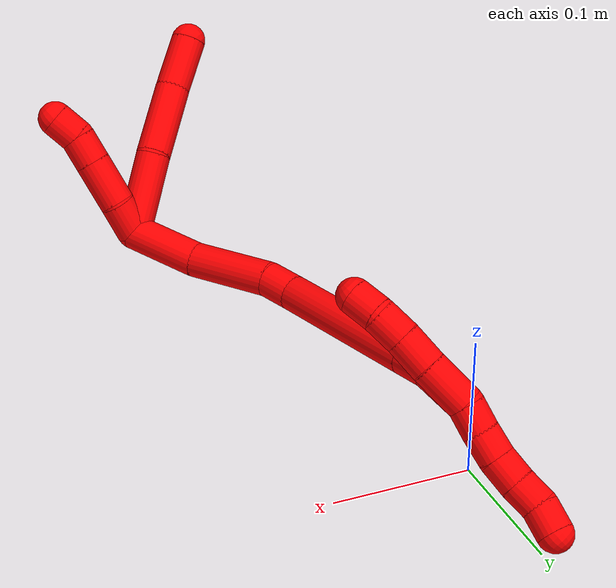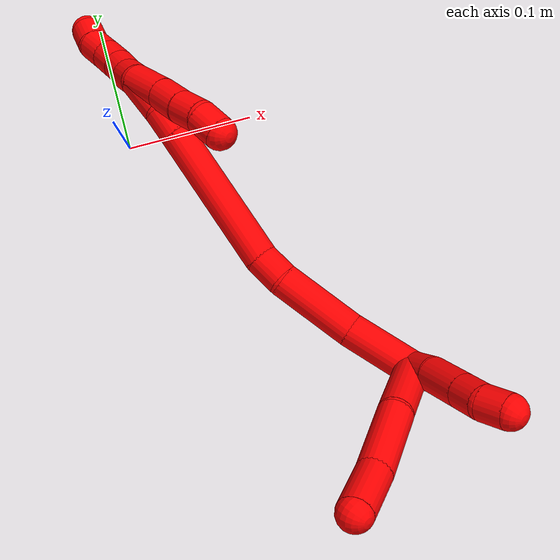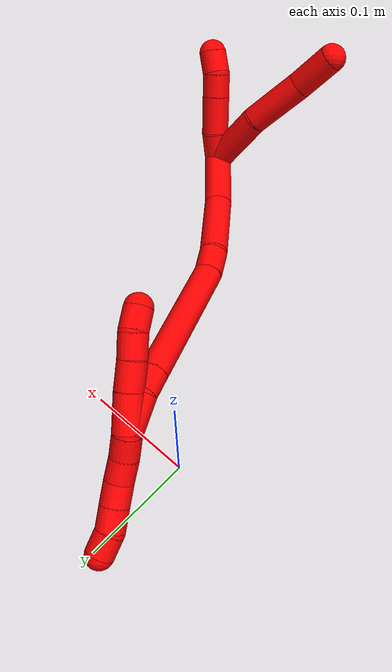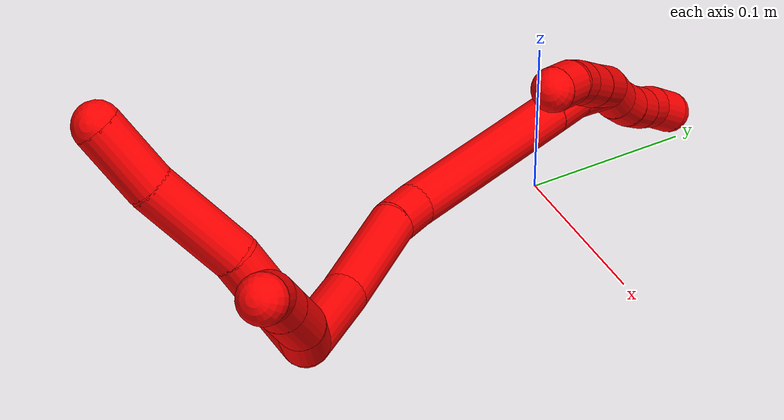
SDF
<sdf version="1.7">
 <world name="default">
  <model name="2">
   <static>0</static>
   <link name="2">
    <collision name="collision-cylinder-e_1_2_8">
     <pose>-0.023908 0.004154 0.015631 -0.259778 -0.976037 0.138461</pose>
     <geometry><cylinder><radius>0.0125</radius><length>0.05773</length></cylinder></geometry>
     <surface>
      <friction><ode><mu>1.16</mu><mu2>1.16</mu2><slip1>0</slip1><slip2>0</slip2></ode></friction>
      <contact><ode><kp>1e+06</kp><kd>1</kd><max_vel>0</max_vel><min_depth>0.001</min_depth></ode></contact>
     </surface>
    </collision>
    <visual name="visual-cylinder-e_1_2_8">
     <pose>-0.023908 0.004154 0.015631 -0.259778 -0.976037 0.138461</pose>
     <geometry><cylinder><radius>0.0125</radius><length>0.05773</length></cylinder></geometry>
     <material><ambient>1 0 0 1</ambient></material>
    </visual>
    <collision name="collision-cylinder-e_2_8_9">
     <pose>-0.070997 0.006758 0.044806 0.113989 -1.03916 -0.06525</pose>
     <geometry><cylinder><radius>0.0125</radius><length>0.053785</length></cylinder></geometry>
     <surface>
      <friction><ode><mu>1.16</mu><mu2>1.16</mu2><slip1>0</slip1><slip2>0</slip2></ode></friction>
      <contact><ode><kp>1e+06</kp><kd>1</kd><max_vel>0</max_vel><min_depth>0.001</min_depth></ode></contact>
     </surface>
    </collision>
    <visual name="visual-cylinder-e_2_8_9">
     <pose>-0.070997 0.006758 0.044806 0.113989 -1.03916 -0.06525</pose>
     <geometry><cylinder><radius>0.0125</radius><length>0.053785</length></cylinder></geometry>
     <material><ambient>1 0 0 1</ambient></material>
    </visual>
    <collision name="collision-cylinder-e_3_9_6">
     <pose>-0.110969 0.006924 0.067591 -0.183696 -1.06048 0.107889</pose>
     <geometry><cylinder><radius>0.0125</radius><length>0.038485</length></cylinder></geometry>
     <surface>
      <friction><ode><mu>1.16</mu><mu2>1.16</mu2><slip1>0</slip1><slip2>0</slip2></ode></friction>
      <contact><ode><kp>1e+06</kp><kd>1</kd><max_vel>0</max_vel><min_depth>0.001</min_depth></ode></contact>
     </surface>
    </collision>
    <visual name="visual-cylinder-e_3_9_6">
     <pose>-0.110969 0.006924 0.067591 -0.183696 -1.06048 0.107889</pose>
     <geometry><cylinder><radius>0.0125</radius><length>0.038485</length></cylinder></geometry>
     <material><ambient>1 0 0 1</ambient></material>
    </visual>
    <collision name="collision-cylinder-e_1_2_10">
     <pose>-0.00161 0.004662 0.011435 -0.387093 -0.129664 0.025448</pose>
     <geometry><cylinder><radius>0.0125</radius><length>0.024907</length></cylinder></geometry>
     <surface>
      <friction><ode><mu>1.16</mu><mu2>1.16</mu2><slip1>0</slip1><slip2>0</slip2></ode></friction>
      <contact><ode><kp>1e+06</kp><kd>1</kd><max_vel>0</max_vel><min_depth>0.001</min_depth></ode></contact>
     </surface>
    </collision>
    <visual name="visual-cylinder-e_1_2_10">
     <pose>-0.00161 0.004662 0.011435 -0.387093 -0.129664 0.025448</pose>
     <geometry><cylinder><radius>0.0125</radius><length>0.024907</length></cylinder></geometry>
     <material><ambient>1 0 0 1</ambient></material>
    </visual>
    <collision name="collision-cylinder-e_2_10_11">
     <pose>-0.00611 0.012871 0.039297 -0.212685 -0.170269 0.018219</pose>
     <geometry><cylinder><radius>0.0125</radius><length>0.034104</length></cylinder></geometry>
     <surface>
      <friction><ode><mu>1.16</mu><mu2>1.16</mu2><slip1>0</slip1><slip2>0</slip2></ode></friction>
      <contact><ode><kp>1e+06</kp><kd>1</kd><max_vel>0</max_vel><min_depth>0.001</min_depth></ode></contact>
     </surface>
    </collision>
    <visual name="visual-cylinder-e_2_10_11">
     <pose>-0.00611 0.012871 0.039297 -0.212685 -0.170269 0.018219</pose>
     <geometry><cylinder><radius>0.0125</radius><length>0.034104</length></cylinder></geometry>
     <material><ambient>1 0 0 1</ambient></material>
    </visual>
    <collision name="collision-cylinder-e_3_11_12">
     <pose>-0.010772 0.018577 0.065816 -0.210771 -0.170129 0.018039</pose>
     <geometry><cylinder><radius>0.0125</radius><length>0.020943</length></cylinder></geometry>
     <surface>
      <friction><ode><mu>1.16</mu><mu2>1.16</mu2><slip1>0</slip1><slip2>0</slip2></ode></friction>
      <contact><ode><kp>1e+06</kp><kd>1</kd><max_vel>0</max_vel><min_depth>0.001</min_depth></ode></contact>
     </surface>
    </collision>
    <visual name="visual-cylinder-e_3_11_12">
     <pose>-0.010772 0.018577 0.065816 -0.210771 -0.170129 0.018039</pose>
     <geometry><cylinder><radius>0.0125</radius><length>0.020943</length></cylinder></geometry>
     <material><ambient>1 0 0 1</ambient></material>
    </visual>
    <collision name="collision-cylinder-e_4_12_5">
     <pose>-0.011059 0.021689 0.085774 -0.096279 0.148843 -0.007184</pose>
     <geometry><cylinder><radius>0.0125</radius><length>0.020046</length></cylinder></geometry>
     <surface>
      <friction><ode><mu>1.16</mu><mu2>1.16</mu2><slip1>0</slip1><slip2>0</slip2></ode></friction>
      <contact><ode><kp>1e+06</kp><kd>1</kd><max_vel>0</max_vel><min_depth>0.001</min_depth></ode></contact>
     </surface>
    </collision>
    <visual name="visual-cylinder-e_4_12_5">
     <pose>-0.011059 0.021689 0.085774 -0.096279 0.148843 -0.007184</pose>
     <geometry><cylinder><radius>0.0125</radius><length>0.020046</length></cylinder></geometry>
     <material><ambient>1 0 0 1</ambient></material>
    </visual>
    <collision name="collision-cylinder-e_1_2_13">
     <pose>-0.007062 0.009367 -0.022995 -2.75476 -0.277088 1.23734</pose>
     <geometry><cylinder><radius>0.0125</radius><length>0.051628</length></cylinder></geometry>
     <surface>
      <friction><ode><mu>1.16</mu><mu2>1.16</mu2><slip1>0</slip1><slip2>0</slip2></ode></friction>
      <contact><ode><kp>1e+06</kp><kd>1</kd><max_vel>0</max_vel><min_depth>0.001</min_depth></ode></contact>
     </surface>
    </collision>
    <visual name="visual-cylinder-e_1_2_13">
     <pose>-0.007062 0.009367 -0.022995 -2.75476 -0.277088 1.23734</pose>
     <geometry><cylinder><radius>0.0125</radius><length>0.051628</length></cylinder></geometry>
     <material><ambient>1 0 0 1</ambient></material>
    </visual>
    <collision name="collision-cylinder-e_2_13_14">
     <pose>-0.024042 0.035461 -0.06896 -2.51221 -0.335844 0.960269</pose>
     <geometry><cylinder><radius>0.0125</radius><length>0.060193</length></cylinder></geometry>
     <surface>
      <friction><ode><mu>1.16</mu><mu2>1.16</mu2><slip1>0</slip1><slip2>0</slip2></ode></friction>
      <contact><ode><kp>1e+06</kp><kd>1</kd><max_vel>0</max_vel><min_depth>0.001</min_depth></ode></contact>
     </surface>
    </collision>
    <visual name="visual-cylinder-e_2_13_14">
     <pose>-0.024042 0.035461 -0.06896 -2.51221 -0.335844 0.960269</pose>
     <geometry><cylinder><radius>0.0125</radius><length>0.060193</length></cylinder></geometry>
     <material><ambient>1 0 0 1</ambient></material>
    </visual>
    <collision name="collision-cylinder-e_3_14_15">
     <pose>-0.035409 0.058054 -0.101333 -2.5837 -0.129927 0.446695</pose>
     <geometry><cylinder><radius>0.0125</radius><length>0.022355</length></cylinder></geometry>
     <surface>
      <friction><ode><mu>1.16</mu><mu2>1.16</mu2><slip1>0</slip1><slip2>0</slip2></ode></friction>
      <contact><ode><kp>1e+06</kp><kd>1</kd><max_vel>0</max_vel><min_depth>0.001</min_depth></ode></contact>
     </surface>
    </collision>
    <visual name="visual-cylinder-e_3_14_15">
     <pose>-0.035409 0.058054 -0.101333 -2.5837 -0.129927 0.446695</pose>
     <geometry><cylinder><radius>0.0125</radius><length>0.022355</length></cylinder></geometry>
     <material><ambient>1 0 0 1</ambient></material>
    </visual>
    <collision name="collision-cylinder-e_4_15_16">
     <pose>-0.038482 0.102372 -0.150372 -2.37137 -0.029409 0.072525</pose>
     <geometry><cylinder><radius>0.0125</radius><length>0.110491</length></cylinder></geometry>
     <surface>
      <friction><ode><mu>1.16</mu><mu2>1.16</mu2><slip1>0</slip1><slip2>0</slip2></ode></friction>
      <contact><ode><kp>1e+06</kp><kd>1</kd><max_vel>0</max_vel><min_depth>0.001</min_depth></ode></contact>
     </surface>
    </collision>
    <visual name="visual-cylinder-e_4_15_16">
     <pose>-0.038482 0.102372 -0.150372 -2.37137 -0.029409 0.072525</pose>
     <geometry><cylinder><radius>0.0125</radius><length>0.110491</length></cylinder></geometry>
     <material><ambient>1 0 0 1</ambient></material>
    </visual>
    <collision name="collision-cylinder-e_5_16_17">
     <pose>-0.040493 0.148232 -0.197763 -2.37907 -0.036103 0.09001</pose>
     <geometry><cylinder><radius>0.0125</radius><length>0.021465</length></cylinder></geometry>
     <surface>
      <friction><ode><mu>1.16</mu><mu2>1.16</mu2><slip1>0</slip1><slip2>0</slip2></ode></friction>
      <contact><ode><kp>1e+06</kp><kd>1</kd><max_vel>0</max_vel><min_depth>0.001</min_depth></ode></contact>
     </surface>
    </collision>
    <visual name="visual-cylinder-e_5_16_17">
     <pose>-0.040493 0.148232 -0.197763 -2.37907 -0.036103 0.09001</pose>
     <geometry><cylinder><radius>0.0125</radius><length>0.021465</length></cylinder></geometry>
     <material><ambient>1 0 0 1</ambient></material>
    </visual>
    <collision name="collision-cylinder-e_6_17_1">
     <pose>-0.039632 0.162966 -0.220735 -2.69292 0.073799 -0.320799</pose>
     <geometry><cylinder><radius>0.0125</radius><length>0.033868</length></cylinder></geometry>
     <surface>
      <friction><ode><mu>1.16</mu><mu2>1.16</mu2><slip1>0</slip1><slip2>0</slip2></ode></friction>
      <contact><ode><kp>1e+06</kp><kd>1</kd><max_vel>0</max_vel><min_depth>0.001</min_depth></ode></contact>
     </surface>
    </collision>
    <visual name="visual-cylinder-e_6_17_1">
     <pose>-0.039632 0.162966 -0.220735 -2.69292 0.073799 -0.320799</pose>
     <geometry><cylinder><radius>0.0125</radius><length>0.033868</length></cylinder></geometry>
     <material><ambient>1 0 0 1</ambient></material>
    </visual>
    <collision name="collision-cylinder-e_1_1_18">
     <pose>-0.038269 0.169275 -0.219383 0.06127 0.006886 0.000211</pose>
     <geometry><cylinder><radius>0.0125</radius><length>0.033199</length></cylinder></geometry>
     <surface>
      <friction><ode><mu>1.16</mu><mu2>1.16</mu2><slip1>0</slip1><slip2>0</slip2></ode></friction>
      <contact><ode><kp>1e+06</kp><kd>1</kd><max_vel>0</max_vel><min_depth>0.001</min_depth></ode></contact>
     </surface>
    </collision>
    <visual name="visual-cylinder-e_1_1_18">
     <pose>-0.038269 0.169275 -0.219383 0.06127 0.006886 0.000211</pose>
     <geometry><cylinder><radius>0.0125</radius><length>0.033199</length></cylinder></geometry>
     <material><ambient>1 0 0 1</ambient></material>
    </visual>
    <collision name="collision-cylinder-e_2_18_19">
     <pose>-0.038887 0.167168 -0.19043 0.087776 -0.058813 -0.002584</pose>
     <geometry><cylinder><radius>0.0125</radius><length>0.02491</length></cylinder></geometry>
     <surface>
      <friction><ode><mu>1.16</mu><mu2>1.16</mu2><slip1>0</slip1><slip2>0</slip2></ode></friction>
      <contact><ode><kp>1e+06</kp><kd>1</kd><max_vel>0</max_vel><min_depth>0.001</min_depth></ode></contact>
     </surface>
    </collision>
    <visual name="visual-cylinder-e_2_18_19">
     <pose>-0.038887 0.167168 -0.19043 0.087776 -0.058813 -0.002584</pose>
     <geometry><cylinder><radius>0.0125</radius><length>0.02491</length></cylinder></geometry>
     <material><ambient>1 0 0 1</ambient></material>
    </visual>
    <collision name="collision-cylinder-e_3_19_20">
     <pose>-0.039246 0.165293 -0.167235 0.072549 0.03439 0.001248</pose>
     <geometry><cylinder><radius>0.0125</radius><length>0.021689</length></cylinder></geometry>
     <surface>
      <friction><ode><mu>1.16</mu><mu2>1.16</mu2><slip1>0</slip1><slip2>0</slip2></ode></friction>
      <contact><ode><kp>1e+06</kp><kd>1</kd><max_vel>0</max_vel><min_depth>0.001</min_depth></ode></contact>
     </surface>
    </collision>
    <visual name="visual-cylinder-e_3_19_20">
     <pose>-0.039246 0.165293 -0.167235 0.072549 0.03439 0.001248</pose>
     <geometry><cylinder><radius>0.0125</radius><length>0.021689</length></cylinder></geometry>
     <material><ambient>1 0 0 1</ambient></material>
    </visual>
    <collision name="collision-cylinder-e_4_20_4">
     <pose>-0.038477 0.16096 -0.146976 0.359129 0.03924 0.007124</pose>
     <geometry><cylinder><radius>0.0125</radius><length>0.020203</length></cylinder></geometry>
     <surface>
      <friction><ode><mu>1.16</mu><mu2>1.16</mu2><slip1>0</slip1><slip2>0</slip2></ode></friction>
      <contact><ode><kp>1e+06</kp><kd>1</kd><max_vel>0</max_vel><min_depth>0.001</min_depth></ode></contact>
     </surface>
    </collision>
    <visual name="visual-cylinder-e_4_20_4">
     <pose>-0.038477 0.16096 -0.146976 0.359129 0.03924 0.007124</pose>
     <geometry><cylinder><radius>0.0125</radius><length>0.020203</length></cylinder></geometry>
     <material><ambient>1 0 0 1</ambient></material>
    </visual>
    <collision name="collision-cylinder-e_1_1_21">
     <pose>-0.035974 0.169275 -0.245603 3.03674 0.243367 2.3309</pose>
     <geometry><cylinder><radius>0.0125</radius><length>0.02</length></cylinder></geometry>
     <surface>
      <friction><ode><mu>1.16</mu><mu2>1.16</mu2><slip1>0</slip1><slip2>0</slip2></ode></friction>
      <contact><ode><kp>1e+06</kp><kd>1</kd><max_vel>0</max_vel><min_depth>0.001</min_depth></ode></contact>
     </surface>
    </collision>
    <visual name="visual-cylinder-e_1_1_21">
     <pose>-0.035974 0.169275 -0.245603 3.03674 0.243367 2.3309</pose>
     <geometry><cylinder><radius>0.0125</radius><length>0.02</length></cylinder></geometry>
     <material><ambient>1 0 0 1</ambient></material>
    </visual>
    <collision name="collision-cylinder-e_2_21_22">
     <pose>-0.031207 0.168714 -0.264963 -3.09482 0.237965 -2.75517</pose>
     <geometry><cylinder><radius>0.0125</radius><length>0.02</length></cylinder></geometry>
     <surface>
      <friction><ode><mu>1.16</mu><mu2>1.16</mu2><slip1>0</slip1><slip2>0</slip2></ode></friction>
      <contact><ode><kp>1e+06</kp><kd>1</kd><max_vel>0</max_vel><min_depth>0.001</min_depth></ode></contact>
     </surface>
    </collision>
    <visual name="visual-cylinder-e_2_21_22">
     <pose>-0.031207 0.168714 -0.264963 -3.09482 0.237965 -2.75517</pose>
     <geometry><cylinder><radius>0.0125</radius><length>0.02</length></cylinder></geometry>
     <material><ambient>1 0 0 1</ambient></material>
    </visual>
    <collision name="collision-cylinder-e_3_22_23">
     <pose>-0.027689 0.170505 -0.284512 -3.00654 0.116364 -1.42202</pose>
     <geometry><cylinder><radius>0.0125</radius><length>0.02</length></cylinder></geometry>
     <surface>
      <friction><ode><mu>1.16</mu><mu2>1.16</mu2><slip1>0</slip1><slip2>0</slip2></ode></friction>
      <contact><ode><kp>1e+06</kp><kd>1</kd><max_vel>0</max_vel><min_depth>0.001</min_depth></ode></contact>
     </surface>
    </collision>
    <visual name="visual-cylinder-e_3_22_23">
     <pose>-0.027689 0.170505 -0.284512 -3.00654 0.116364 -1.42202</pose>
     <geometry><cylinder><radius>0.0125</radius><length>0.02</length></cylinder></geometry>
     <material><ambient>1 0 0 1</ambient></material>
    </visual>
    <collision name="collision-cylinder-e_4_23_24">
     <pose>-0.02608 0.173804 -0.30415 -2.94401 0.044772 -0.44434</pose>
     <geometry><cylinder><radius>0.0125</radius><length>0.02</length></cylinder></geometry>
     <surface>
      <friction><ode><mu>1.16</mu><mu2>1.16</mu2><slip1>0</slip1><slip2>0</slip2></ode></friction>
      <contact><ode><kp>1e+06</kp><kd>1</kd><max_vel>0</max_vel><min_depth>0.001</min_depth></ode></contact>
     </surface>
    </collision>
    <visual name="visual-cylinder-e_4_23_24">
     <pose>-0.02608 0.173804 -0.30415 -2.94401 0.044772 -0.44434</pose>
     <geometry><cylinder><radius>0.0125</radius><length>0.02</length></cylinder></geometry>
     <material><ambient>1 0 0 1</ambient></material>
    </visual>
    <collision name="collision-cylinder-e_5_24_3">
     <pose>-0.022304 0.178112 -0.323078 -2.89008 0.339344 -1.8701</pose>
     <geometry><cylinder><radius>0.0125</radius><length>0.02</length></cylinder></geometry>
     <surface>
      <friction><ode><mu>1.16</mu><mu2>1.16</mu2><slip1>0</slip1><slip2>0</slip2></ode></friction>
      <contact><ode><kp>1e+06</kp><kd>1</kd><max_vel>0</max_vel><min_depth>0.001</min_depth></ode></contact>
     </surface>
    </collision>
    <visual name="visual-cylinder-e_5_24_3">
     <pose>-0.022304 0.178112 -0.323078 -2.89008 0.339344 -1.8701</pose>
     <geometry><cylinder><radius>0.0125</radius><length>0.02</length></cylinder></geometry>
     <material><ambient>1 0 0 1</ambient></material>
    </visual>
    <collision name="collision-sphere-3">
     <pose>-0.018975 0.180458 -0.332211 0 -0 0</pose>
     <geometry><sphere><radius>0.0125</radius></sphere></geometry>
     <surface>
      <friction><ode><mu>1.16</mu><mu2>1.16</mu2><slip1>0</slip1><slip2>0</slip2></ode></friction>
      <contact><ode><kp>1e+06</kp><kd>1</kd><max_vel>0</max_vel><min_depth>0.001</min_depth></ode></contact>
     </surface>
    </collision>
    <visual name="visual-sphere-3">
     <pose>-0.018975 0.180458 -0.332211 0 -0 0</pose>
     <geometry><sphere><radius>0.0125</radius></sphere></geometry>
     <material><ambient>1 0 0 1</ambient></material>
    </visual>
    <collision name="collision-sphere-24">
     <pose>-0.025633 0.175765 -0.313945 0 -0 0</pose>
     <geometry><sphere><radius>0.0125</radius></sphere></geometry>
     <surface>
      <friction><ode><mu>1.16</mu><mu2>1.16</mu2><slip1>0</slip1><slip2>0</slip2></ode></friction>
      <contact><ode><kp>1e+06</kp><kd>1</kd><max_vel>0</max_vel><min_depth>0.001</min_depth></ode></contact>
     </surface>
    </collision>
    <visual name="visual-sphere-24">
     <pose>-0.025633 0.175765 -0.313945 0 -0 0</pose>
     <geometry><sphere><radius>0.0125</radius></sphere></geometry>
     <material><ambient>1 0 0 1</ambient></material>
    </visual>
    <collision name="collision-sphere-23">
     <pose>-0.026528 0.171843 -0.294354 0 -0 0</pose>
     <geometry><sphere><radius>0.0125</radius></sphere></geometry>
     <surface>
      <friction><ode><mu>1.16</mu><mu2>1.16</mu2><slip1>0</slip1><slip2>0</slip2></ode></friction>
      <contact><ode><kp>1e+06</kp><kd>1</kd><max_vel>0</max_vel><min_depth>0.001</min_depth></ode></contact>
     </surface>
    </collision>
    <visual name="visual-sphere-23">
     <pose>-0.026528 0.171843 -0.294354 0 -0 0</pose>
     <geometry><sphere><radius>0.0125</radius></sphere></geometry>
     <material><ambient>1 0 0 1</ambient></material>
    </visual>
    <collision name="collision-sphere-22">
     <pose>-0.02885 0.169168 -0.27467 0 -0 0</pose>
     <geometry><sphere><radius>0.0125</radius></sphere></geometry>
     <surface>
      <friction><ode><mu>1.16</mu><mu2>1.16</mu2><slip1>0</slip1><slip2>0</slip2></ode></friction>
      <contact><ode><kp>1e+06</kp><kd>1</kd><max_vel>0</max_vel><min_depth>0.001</min_depth></ode></contact>
     </surface>
    </collision>
    <visual name="visual-sphere-22">
     <pose>-0.02885 0.169168 -0.27467 0 -0 0</pose>
     <geometry><sphere><radius>0.0125</radius></sphere></geometry>
     <material><ambient>1 0 0 1</ambient></material>
    </visual>
    <collision name="collision-sphere-21">
     <pose>-0.033564 0.168259 -0.255255 0 -0 0</pose>
     <geometry><sphere><radius>0.0125</radius></sphere></geometry>
     <surface>
      <friction><ode><mu>1.16</mu><mu2>1.16</mu2><slip1>0</slip1><slip2>0</slip2></ode></friction>
      <contact><ode><kp>1e+06</kp><kd>1</kd><max_vel>0</max_vel><min_depth>0.001</min_depth></ode></contact>
     </surface>
    </collision>
    <visual name="visual-sphere-21">
     <pose>-0.033564 0.168259 -0.255255 0 -0 0</pose>
     <geometry><sphere><radius>0.0125</radius></sphere></geometry>
     <material><ambient>1 0 0 1</ambient></material>
    </visual>
    <collision name="collision-sphere-4">
     <pose>-0.038081 0.157412 -0.137526 0 -0 0</pose>
     <geometry><sphere><radius>0.0125</radius></sphere></geometry>
     <surface>
      <friction><ode><mu>1.16</mu><mu2>1.16</mu2><slip1>0</slip1><slip2>0</slip2></ode></friction>
      <contact><ode><kp>1e+06</kp><kd>1</kd><max_vel>0</max_vel><min_depth>0.001</min_depth></ode></contact>
     </surface>
    </collision>
    <visual name="visual-sphere-4">
     <pose>-0.038081 0.157412 -0.137526 0 -0 0</pose>
     <geometry><sphere><radius>0.0125</radius></sphere></geometry>
     <material><ambient>1 0 0 1</ambient></material>
    </visual>
    <collision name="collision-sphere-20">
     <pose>-0.038873 0.164507 -0.156425 0 -0 0</pose>
     <geometry><sphere><radius>0.0125</radius></sphere></geometry>
     <surface>
      <friction><ode><mu>1.16</mu><mu2>1.16</mu2><slip1>0</slip1><slip2>0</slip2></ode></friction>
      <contact><ode><kp>1e+06</kp><kd>1</kd><max_vel>0</max_vel><min_depth>0.001</min_depth></ode></contact>
     </surface>
    </collision>
    <visual name="visual-sphere-20">
     <pose>-0.038873 0.164507 -0.156425 0 -0 0</pose>
     <geometry><sphere><radius>0.0125</radius></sphere></geometry>
     <material><ambient>1 0 0 1</ambient></material>
    </visual>
    <collision name="collision-sphere-11">
     <pose>-0.008999 0.016418 0.055724 0 -0 0</pose>
     <geometry><sphere><radius>0.0125</radius></sphere></geometry>
     <surface>
      <friction><ode><mu>1.16</mu><mu2>1.16</mu2><slip1>0</slip1><slip2>0</slip2></ode></friction>
      <contact><ode><kp>1e+06</kp><kd>1</kd><max_vel>0</max_vel><min_depth>0.001</min_depth></ode></contact>
     </surface>
    </collision>
    <visual name="visual-sphere-11">
     <pose>-0.008999 0.016418 0.055724 0 -0 0</pose>
     <geometry><sphere><radius>0.0125</radius></sphere></geometry>
     <material><ambient>1 0 0 1</ambient></material>
    </visual>
    <collision name="collision-sphere-10">
     <pose>-0.003221 0.009324 0.022871 0 -0 0</pose>
     <geometry><sphere><radius>0.0125</radius></sphere></geometry>
     <surface>
      <friction><ode><mu>1.16</mu><mu2>1.16</mu2><slip1>0</slip1><slip2>0</slip2></ode></friction>
      <contact><ode><kp>1e+06</kp><kd>1</kd><max_vel>0</max_vel><min_depth>0.001</min_depth></ode></contact>
     </surface>
    </collision>
    <visual name="visual-sphere-10">
     <pose>-0.003221 0.009324 0.022871 0 -0 0</pose>
     <geometry><sphere><radius>0.0125</radius></sphere></geometry>
     <material><ambient>1 0 0 1</ambient></material>
    </visual>
    <collision name="collision-sphere-6">
     <pose>-0.12776 0.008641 0.076832 0 -0 0</pose>
     <geometry><sphere><radius>0.0125</radius></sphere></geometry>
     <surface>
      <friction><ode><mu>1.16</mu><mu2>1.16</mu2><slip1>0</slip1><slip2>0</slip2></ode></friction>
      <contact><ode><kp>1e+06</kp><kd>1</kd><max_vel>0</max_vel><min_depth>0.001</min_depth></ode></contact>
     </surface>
    </collision>
    <visual name="visual-sphere-6">
     <pose>-0.12776 0.008641 0.076832 0 -0 0</pose>
     <geometry><sphere><radius>0.0125</radius></sphere></geometry>
     <material><ambient>1 0 0 1</ambient></material>
    </visual>
    <collision name="collision-sphere-9">
     <pose>-0.094178 0.005207 0.05835 0 -0 0</pose>
     <geometry><sphere><radius>0.0125</radius></sphere></geometry>
     <surface>
      <friction><ode><mu>1.16</mu><mu2>1.16</mu2><slip1>0</slip1><slip2>0</slip2></ode></friction>
      <contact><ode><kp>1e+06</kp><kd>1</kd><max_vel>0</max_vel><min_depth>0.001</min_depth></ode></contact>
     </surface>
    </collision>
    <visual name="visual-sphere-9">
     <pose>-0.094178 0.005207 0.05835 0 -0 0</pose>
     <geometry><sphere><radius>0.0125</radius></sphere></geometry>
     <material><ambient>1 0 0 1</ambient></material>
    </visual>
    <collision name="collision-sphere-2">
     <geometry><sphere><radius>0.0125</radius></sphere></geometry>
     <surface>
      <friction><ode><mu>1.16</mu><mu2>1.16</mu2><slip1>0</slip1><slip2>0</slip2></ode></friction>
      <contact><ode><kp>1e+06</kp><kd>1</kd><max_vel>0</max_vel><min_depth>0.001</min_depth></ode></contact>
     </surface>
    </collision>
    <visual name="visual-sphere-2">
     <geometry><sphere><radius>0.0125</radius></sphere></geometry>
     <material><ambient>1 0 0 1</ambient></material>
    </visual>
    <collision name="collision-sphere-19">
     <pose>-0.039619 0.166078 -0.178045 0 -0 0</pose>
     <geometry><sphere><radius>0.0125</radius></sphere></geometry>
     <surface>
      <friction><ode><mu>1.16</mu><mu2>1.16</mu2><slip1>0</slip1><slip2>0</slip2></ode></friction>
      <contact><ode><kp>1e+06</kp><kd>1</kd><max_vel>0</max_vel><min_depth>0.001</min_depth></ode></contact>
     </surface>
    </collision>
    <visual name="visual-sphere-19">
     <pose>-0.039619 0.166078 -0.178045 0 -0 0</pose>
     <geometry><sphere><radius>0.0125</radius></sphere></geometry>
     <material><ambient>1 0 0 1</ambient></material>
    </visual>
    <collision name="collision-sphere-8">
     <pose>-0.047817 0.008309 0.031261 0 -0 0</pose>
     <geometry><sphere><radius>0.0125</radius></sphere></geometry>
     <surface>
      <friction><ode><mu>1.16</mu><mu2>1.16</mu2><slip1>0</slip1><slip2>0</slip2></ode></friction>
      <contact><ode><kp>1e+06</kp><kd>1</kd><max_vel>0</max_vel><min_depth>0.001</min_depth></ode></contact>
     </surface>
    </collision>
    <visual name="visual-sphere-8">
     <pose>-0.047817 0.008309 0.031261 0 -0 0</pose>
     <geometry><sphere><radius>0.0125</radius></sphere></geometry>
     <material><ambient>1 0 0 1</ambient></material>
    </visual>
    <collision name="collision-sphere-12">
     <pose>-0.012545 0.020737 0.075908 0 -0 0</pose>
     <geometry><sphere><radius>0.0125</radius></sphere></geometry>
     <surface>
      <friction><ode><mu>1.16</mu><mu2>1.16</mu2><slip1>0</slip1><slip2>0</slip2></ode></friction>
      <contact><ode><kp>1e+06</kp><kd>1</kd><max_vel>0</max_vel><min_depth>0.001</min_depth></ode></contact>
     </surface>
    </collision>
    <visual name="visual-sphere-12">
     <pose>-0.012545 0.020737 0.075908 0 -0 0</pose>
     <geometry><sphere><radius>0.0125</radius></sphere></geometry>
     <material><ambient>1 0 0 1</ambient></material>
    </visual>
    <collision name="collision-sphere-5">
     <pose>-0.009573 0.022642 0.09564 0 -0 0</pose>
     <geometry><sphere><radius>0.0125</radius></sphere></geometry>
     <surface>
      <friction><ode><mu>1.16</mu><mu2>1.16</mu2><slip1>0</slip1><slip2>0</slip2></ode></friction>
      <contact><ode><kp>1e+06</kp><kd>1</kd><max_vel>0</max_vel><min_depth>0.001</min_depth></ode></contact>
     </surface>
    </collision>
    <visual name="visual-sphere-5">
     <pose>-0.009573 0.022642 0.09564 0 -0 0</pose>
     <geometry><sphere><radius>0.0125</radius></sphere></geometry>
     <material><ambient>1 0 0 1</ambient></material>
    </visual>
    <collision name="collision-sphere-13">
     <pose>-0.014123 0.018734 -0.04599 0 -0 0</pose>
     <geometry><sphere><radius>0.0125</radius></sphere></geometry>
     <surface>
      <friction><ode><mu>1.16</mu><mu2>1.16</mu2><slip1>0</slip1><slip2>0</slip2></ode></friction>
      <contact><ode><kp>1e+06</kp><kd>1</kd><max_vel>0</max_vel><min_depth>0.001</min_depth></ode></contact>
     </surface>
    </collision>
    <visual name="visual-sphere-13">
     <pose>-0.014123 0.018734 -0.04599 0 -0 0</pose>
     <geometry><sphere><radius>0.0125</radius></sphere></geometry>
     <material><ambient>1 0 0 1</ambient></material>
    </visual>
    <collision name="collision-sphere-14">
     <pose>-0.033961 0.052187 -0.091931 0 -0 0</pose>
     <geometry><sphere><radius>0.0125</radius></sphere></geometry>
     <surface>
      <friction><ode><mu>1.16</mu><mu2>1.16</mu2><slip1>0</slip1><slip2>0</slip2></ode></friction>
      <contact><ode><kp>1e+06</kp><kd>1</kd><max_vel>0</max_vel><min_depth>0.001</min_depth></ode></contact>
     </surface>
    </collision>
    <visual name="visual-sphere-14">
     <pose>-0.033961 0.052187 -0.091931 0 -0 0</pose>
     <geometry><sphere><radius>0.0125</radius></sphere></geometry>
     <material><ambient>1 0 0 1</ambient></material>
    </visual>
    <collision name="collision-sphere-15">
     <pose>-0.036857 0.063922 -0.110736 0 -0 0</pose>
     <geometry><sphere><radius>0.0125</radius></sphere></geometry>
     <surface>
      <friction><ode><mu>1.16</mu><mu2>1.16</mu2><slip1>0</slip1><slip2>0</slip2></ode></friction>
      <contact><ode><kp>1e+06</kp><kd>1</kd><max_vel>0</max_vel><min_depth>0.001</min_depth></ode></contact>
     </surface>
    </collision>
    <visual name="visual-sphere-15">
     <pose>-0.036857 0.063922 -0.110736 0 -0 0</pose>
     <geometry><sphere><radius>0.0125</radius></sphere></geometry>
     <material><ambient>1 0 0 1</ambient></material>
    </visual>
    <collision name="collision-sphere-16">
     <pose>-0.040106 0.140823 -0.190007 0 -0 0</pose>
     <geometry><sphere><radius>0.0125</radius></sphere></geometry>
     <surface>
      <friction><ode><mu>1.16</mu><mu2>1.16</mu2><slip1>0</slip1><slip2>0</slip2></ode></friction>
      <contact><ode><kp>1e+06</kp><kd>1</kd><max_vel>0</max_vel><min_depth>0.001</min_depth></ode></contact>
     </surface>
    </collision>
    <visual name="visual-sphere-16">
     <pose>-0.040106 0.140823 -0.190007 0 -0 0</pose>
     <geometry><sphere><radius>0.0125</radius></sphere></geometry>
     <material><ambient>1 0 0 1</ambient></material>
    </visual>
    <collision name="collision-sphere-17">
     <pose>-0.040881 0.15564 -0.205518 0 -0 0</pose>
     <geometry><sphere><radius>0.0125</radius></sphere></geometry>
     <surface>
      <friction><ode><mu>1.16</mu><mu2>1.16</mu2><slip1>0</slip1><slip2>0</slip2></ode></friction>
      <contact><ode><kp>1e+06</kp><kd>1</kd><max_vel>0</max_vel><min_depth>0.001</min_depth></ode></contact>
     </surface>
    </collision>
    <visual name="visual-sphere-17">
     <pose>-0.040881 0.15564 -0.205518 0 -0 0</pose>
     <geometry><sphere><radius>0.0125</radius></sphere></geometry>
     <material><ambient>1 0 0 1</ambient></material>
    </visual>
    <collision name="collision-sphere-1">
     <pose>-0.038384 0.170291 -0.235951 0 -0 0</pose>
     <geometry><sphere><radius>0.0125</radius></sphere></geometry>
     <surface>
      <friction><ode><mu>1.16</mu><mu2>1.16</mu2><slip1>0</slip1><slip2>0</slip2></ode></friction>
      <contact><ode><kp>1e+06</kp><kd>1</kd><max_vel>0</max_vel><min_depth>0.001</min_depth></ode></contact>
     </surface>
    </collision>
    <visual name="visual-sphere-1">
     <pose>-0.038384 0.170291 -0.235951 0 -0 0</pose>
     <geometry><sphere><radius>0.0125</radius></sphere></geometry>
     <material><ambient>1 0 0 1</ambient></material>
    </visual>
    <collision name="collision-sphere-18">
     <pose>-0.038155 0.168258 -0.202815 0 -0 0</pose>
     <geometry><sphere><radius>0.0125</radius></sphere></geometry>
     <surface>
      <friction><ode><mu>1.16</mu><mu2>1.16</mu2><slip1>0</slip1><slip2>0</slip2></ode></friction>
      <contact><ode><kp>1e+06</kp><kd>1</kd><max_vel>0</max_vel><min_depth>0.001</min_depth></ode></contact>
     </surface>
    </collision>
    <visual name="visual-sphere-18">
     <pose>-0.038155 0.168258 -0.202815 0 -0 0</pose>
     <geometry><sphere><radius>0.0125</radius></sphere></geometry>
     <material><ambient>1 0 0 1</ambient></material>
    </visual>
    <inertial>
     <pose>-0.03462 0.080008 -0.096496 0 -0 0</pose>
     <mass>0.75</mass>
     <inertia>
      <ixx>0.000201</ixx>
      <ixy>0</ixy>
      <ixz>0</ixz>
      <iyy>1.1e-05</iyy>
      <iyz>0</iyz>
      <izz>-6.3e-05</izz>
     </inertia>
    </inertial>
   </link>
   <pose>0.160298 -0.226141 0.106271 0.767823 0.465758 0.293377</pose>
  </model>
 </world>
</sdf>
